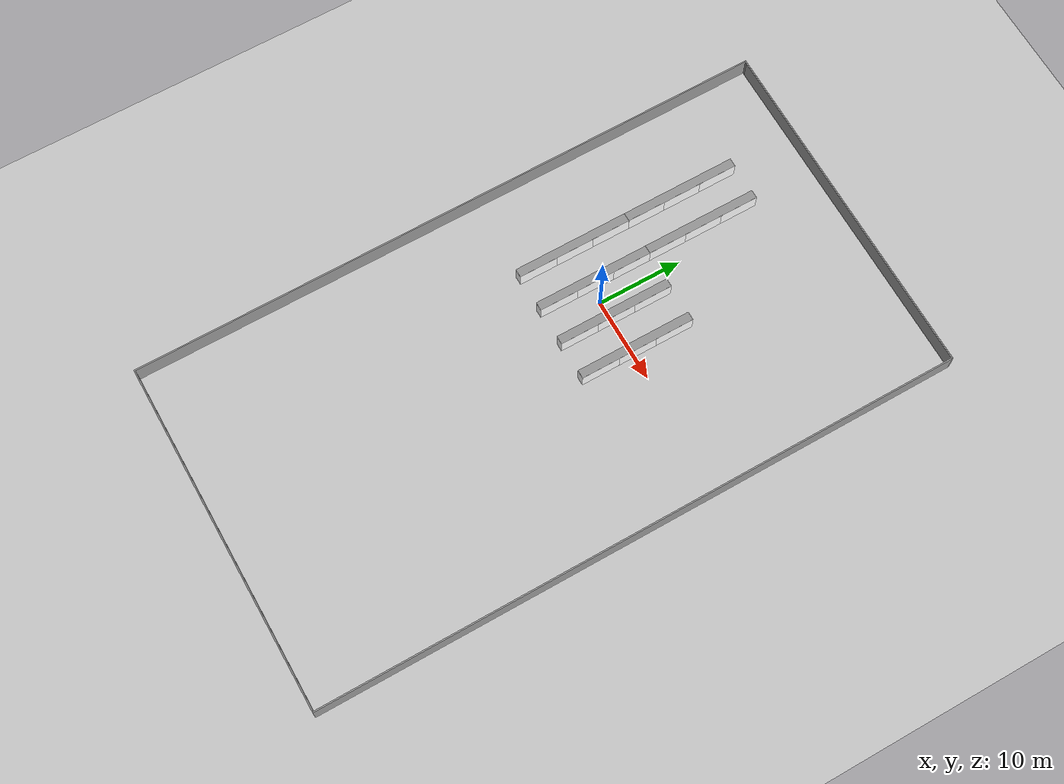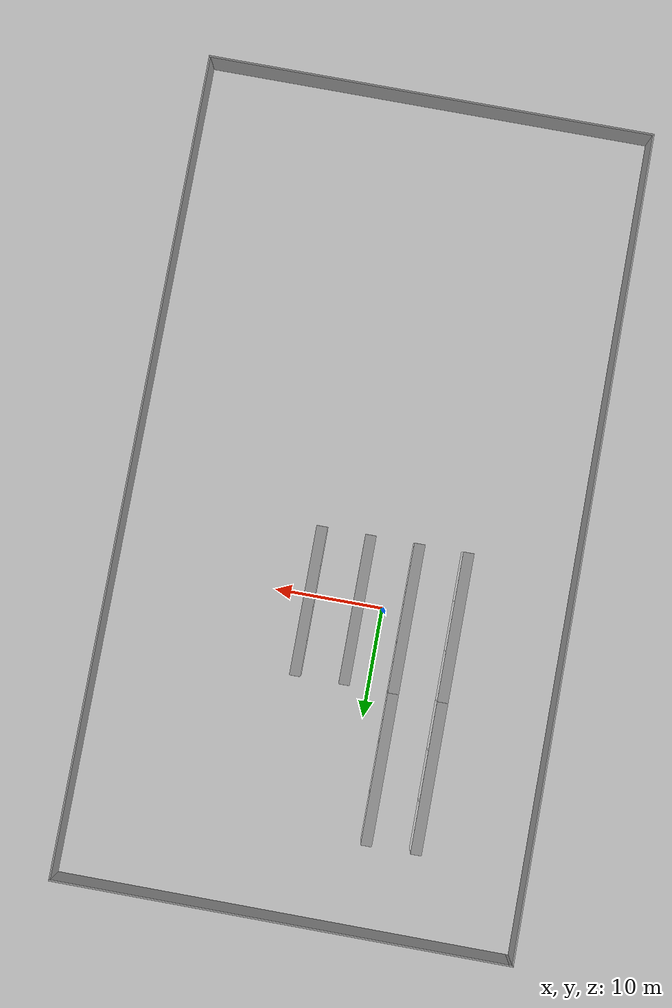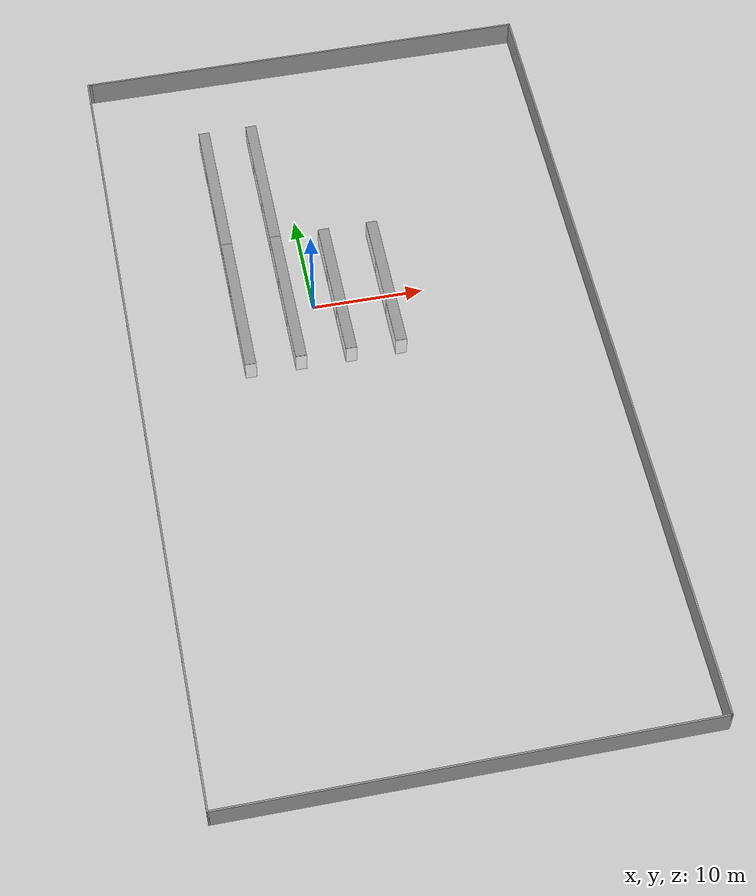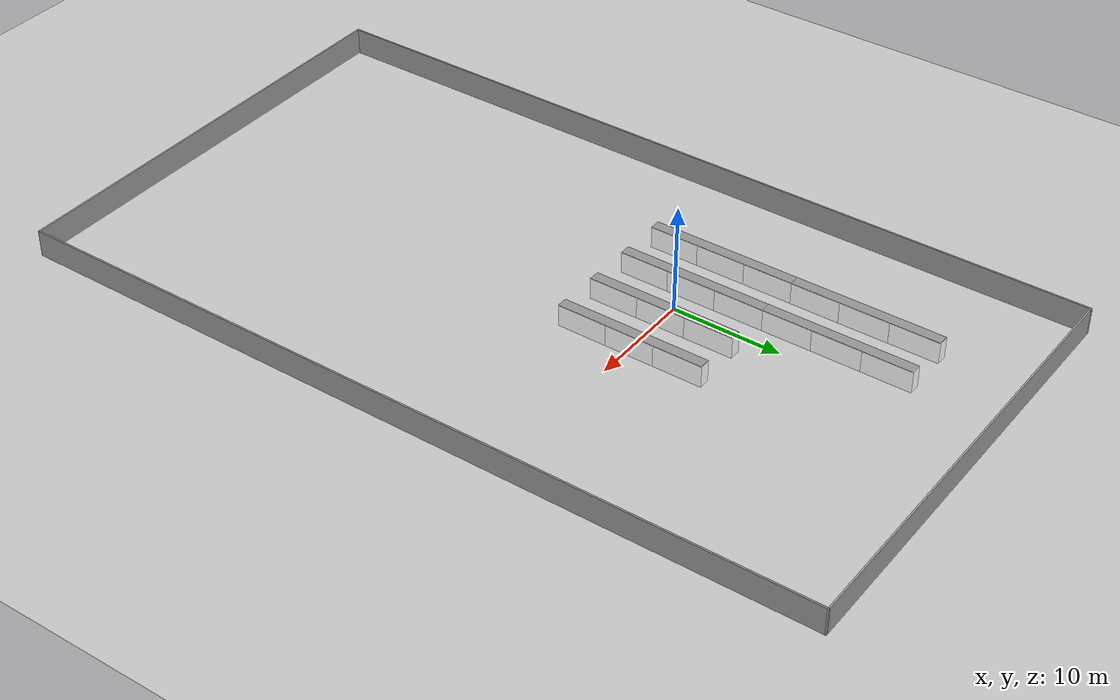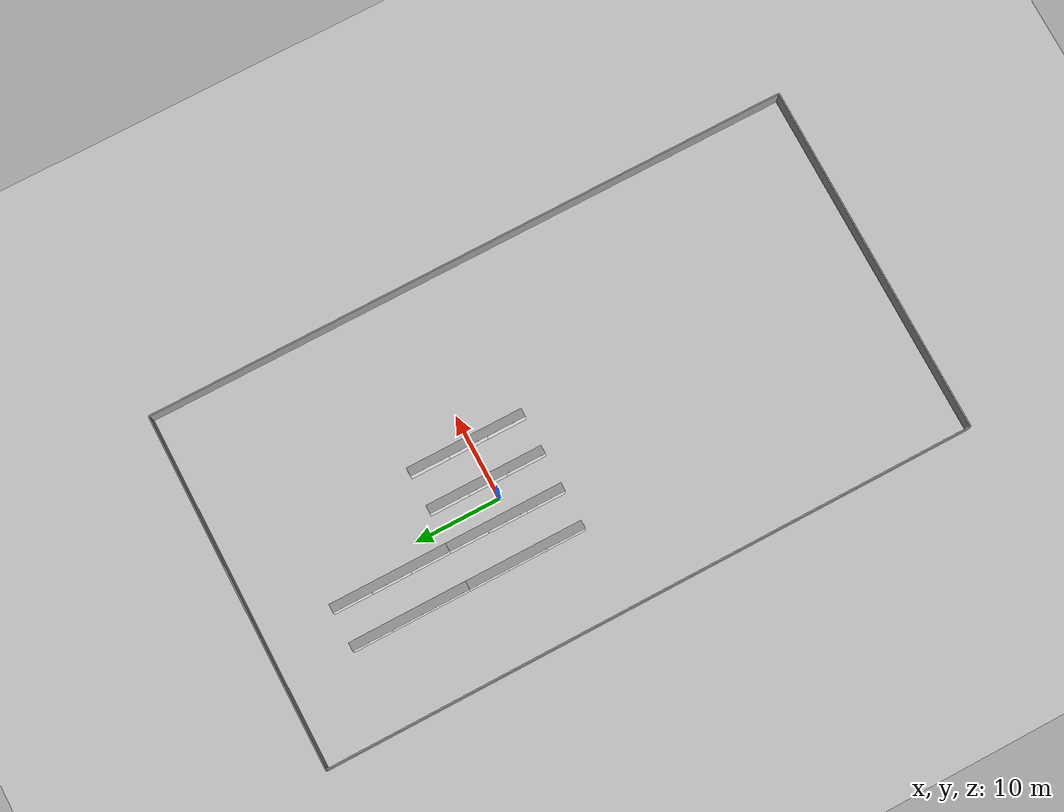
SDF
<sdf version="1.6">
 <world name="default">
  <light name="sun" type="directional">
   <pose>0 0 10 0 -0 0</pose>
   <diffuse>0.8 0.8 0.8 1</diffuse>
   <specular>0.2 0.2 0.2 1</specular>
   <attenuation>
    <range>1000</range>
    <constant>0.9</constant>
    <linear>0.01</linear>
    <quadratic>0.001</quadratic>
   </attenuation>
   <direction>-0.5 0.1 -0.9</direction>
  </light>
  <model name="ground_plane">
   <static>1</static>
   <link name="link">
    <collision name="collision">
     <geometry><plane><normal>0 0 1</normal><size>100 100</size></plane></geometry>
     <surface><friction><ode><mu>100</mu><mu2>50</mu2></ode></friction></surface>
    </collision>
    <visual name="visual">
     <cast_shadows>0</cast_shadows>
     <geometry><plane><normal>0 0 1</normal><size>100 100</size></plane></geometry>
     <material>
      <script><uri>file://media/materials/scripts/gazebo.material</uri><name>Gazebo/Grey</name></script>
     </material>
    </visual>
   </link>
  </model>
  <gravity>0 0 -9.8</gravity>
  <magnetic_field>6e-06 2.3e-05 -4.2e-05</magnetic_field>
  <atmosphere type="adiabatic"/>
  <physics name="default_physics" default="0" type="ode">
   <max_step_size>0.001</max_step_size>
   <real_time_factor>1</real_time_factor>
   <real_time_update_rate>1000</real_time_update_rate>
  </physics>
  <scene><ambient>0.4 0.4 0.4 1</ambient><background>0.7 0.7 0.7 1</background><shadows>1</shadows></scene>
  <spherical_coordinates>
   <surface_model>EARTH_WGS84</surface_model>
   <latitude_deg>0</latitude_deg>
   <longitude_deg>0</longitude_deg>
   <elevation>0</elevation>
   <heading_deg>0</heading_deg>
  </spherical_coordinates>
  <model name="market_aisle_clone">
   <link name="link_0">
    <inertial>
     <mass>45.3865</mass>
     <inertia><ixx>668.696</ixx><ixy>0</ixy><ixz>0</ixz><iyy>41.6273</iyy><iyz>0</iyz><izz>636.647</izz></inertia>
    </inertial>
    <visual name="visual">
     <material>
      <script>
       <uri>model://market_aisle/materials/scripts</uri>
       <uri>model://market_aisle/materials/textures</uri>
       <name>market_aisle/Picture</name>
      </script>
      <shader type="pixel"><normal_map>__default__</normal_map></shader>
      <ambient>1 1 1 1</ambient>
      <diffuse>1 1 1 1</diffuse>
      <specular>0 0 0 1</specular>
      <emissive>0 0 0 1</emissive>
     </material>
     <geometry><box><size>1 4.57035 2</size></box></geometry>
    </visual>
    <collision name="collision">
     <geometry><box><size>1 4.57035 2</size></box></geometry>
     <surface>
      <friction>
       <ode><mu>1</mu><mu2>1</mu2><fdir1>0 0 0</fdir1><slip1>0</slip1><slip2>0</slip2></ode>
       <torsional>
        <coefficient>1</coefficient>
        <patch_radius>0</patch_radius>
        <surface_radius>0</surface_radius>
        <use_patch_radius>1</use_patch_radius>
        <ode><slip>0</slip></ode>
       </torsional>
      </friction>
      <bounce><restitution_coefficient>0</restitution_coefficient><threshold>1e+06</threshold></bounce>
      <contact>
       <collide_without_contact>0</collide_without_contact>
       <collide_without_contact_bitmask>1</collide_without_contact_bitmask>
       <collide_bitmask>1</collide_bitmask>
       <ode>
        <soft_cfm>0</soft_cfm>
        <soft_erp>0.2</soft_erp>
        <kp>1e+13</kp>
        <kd>1</kd>
        <max_vel>0.01</max_vel>
        <min_depth>0</min_depth>
       </ode>
       <bullet>
        <split_impulse>1</split_impulse>
        <split_impulse_penetration_threshold>-0.01</split_impulse_penetration_threshold>
        <soft_cfm>0</soft_cfm>
        <soft_erp>0.2</soft_erp>
        <kp>1e+13</kp>
        <kd>1</kd>
       </bullet>
      </contact>
     </surface>
    </collision>
   </link>
   <static>1</static>
   <pose>-2.25 -4.17401 1 0 -0 0</pose>
  </model>
  <model name="market_aisle_clone_0">
   <link name="link_0">
    <inertial>
     <mass>45.3865</mass>
     <inertia><ixx>668.696</ixx><ixy>0</ixy><ixz>0</ixz><iyy>41.6273</iyy><iyz>0</iyz><izz>636.647</izz></inertia>
    </inertial>
    <visual name="visual">
     <material>
      <script>
       <uri>model://market_aisle/materials/scripts</uri>
       <uri>model://market_aisle/materials/textures</uri>
       <name>market_aisle/Picture</name>
      </script>
      <shader type="pixel"><normal_map>__default__</normal_map></shader>
      <ambient>1 1 1 1</ambient>
      <diffuse>1 1 1 1</diffuse>
      <specular>0 0 0 1</specular>
      <emissive>0 0 0 1</emissive>
     </material>
     <geometry><box><size>1 4.57035 2</size></box></geometry>
    </visual>
    <collision name="collision">
     <geometry><box><size>1 4.57035 2</size></box></geometry>
     <surface>
      <friction>
       <ode><mu>1</mu><mu2>1</mu2><fdir1>0 0 0</fdir1><slip1>0</slip1><slip2>0</slip2></ode>
       <torsional>
        <coefficient>1</coefficient>
        <patch_radius>0</patch_radius>
        <surface_radius>0</surface_radius>
        <use_patch_radius>1</use_patch_radius>
        <ode><slip>0</slip></ode>
       </torsional>
      </friction>
      <bounce><restitution_coefficient>0</restitution_coefficient><threshold>1e+06</threshold></bounce>
      <contact>
       <collide_without_contact>0</collide_without_contact>
       <collide_without_contact_bitmask>1</collide_without_contact_bitmask>
       <collide_bitmask>1</collide_bitmask>
       <ode>
        <soft_cfm>0</soft_cfm>
        <soft_erp>0.2</soft_erp>
        <kp>1e+13</kp>
        <kd>1</kd>
        <max_vel>0.01</max_vel>
        <min_depth>0</min_depth>
       </ode>
       <bullet>
        <split_impulse>1</split_impulse>
        <split_impulse_penetration_threshold>-0.01</split_impulse_penetration_threshold>
        <soft_cfm>0</soft_cfm>
        <soft_erp>0.2</soft_erp>
        <kp>1e+13</kp>
        <kd>1</kd>
       </bullet>
      </contact>
     </surface>
    </collision>
   </link>
   <static>1</static>
   <pose>-2.25 4.953 1 0 -0 0</pose>
  </model>
  <model name="market_aisle_clone1">
   <link name="link_0">
    <inertial>
     <mass>45.3865</mass>
     <inertia><ixx>668.696</ixx><ixy>0</ixy><ixz>0</ixz><iyy>41.6273</iyy><iyz>0</iyz><izz>636.647</izz></inertia>
    </inertial>
    <visual name="visual">
     <material>
      <script>
       <uri>model://market_aisle/materials/scripts</uri>
       <uri>model://market_aisle/materials/textures</uri>
       <name>market_aisle/Picture</name>
      </script>
      <shader type="pixel"><normal_map>__default__</normal_map></shader>
      <ambient>1 1 1 1</ambient>
      <diffuse>1 1 1 1</diffuse>
      <specular>0 0 0 1</specular>
      <emissive>0 0 0 1</emissive>
     </material>
     <geometry><box><size>1 4.57035 2</size></box></geometry>
    </visual>
    <collision name="collision">
     <geometry><box><size>1 4.57035 2</size></box></geometry>
     <surface>
      <friction>
       <ode><mu>1</mu><mu2>1</mu2><fdir1>0 0 0</fdir1><slip1>0</slip1><slip2>0</slip2></ode>
       <torsional>
        <coefficient>1</coefficient>
        <patch_radius>0</patch_radius>
        <surface_radius>0</surface_radius>
        <use_patch_radius>1</use_patch_radius>
        <ode><slip>0</slip></ode>
       </torsional>
      </friction>
      <bounce><restitution_coefficient>0</restitution_coefficient><threshold>1e+06</threshold></bounce>
      <contact>
       <collide_without_contact>0</collide_without_contact>
       <collide_without_contact_bitmask>1</collide_without_contact_bitmask>
       <collide_bitmask>1</collide_bitmask>
       <ode>
        <soft_cfm>0</soft_cfm>
        <soft_erp>0.2</soft_erp>
        <kp>1e+13</kp>
        <kd>1</kd>
        <max_vel>0.01</max_vel>
        <min_depth>0</min_depth>
       </ode>
       <bullet>
        <split_impulse>1</split_impulse>
        <split_impulse_penetration_threshold>-0.01</split_impulse_penetration_threshold>
        <soft_cfm>0</soft_cfm>
        <soft_erp>0.2</soft_erp>
        <kp>1e+13</kp>
        <kd>1</kd>
       </bullet>
      </contact>
     </surface>
    </collision>
   </link>
   <static>1</static>
   <pose>2.25 -4.17401 1 0 -0 0</pose>
  </model>
  <model name="market_aisle_clone_01">
   <link name="link_0">
    <inertial>
     <mass>45.3865</mass>
     <inertia><ixx>668.696</ixx><ixy>0</ixy><ixz>0</ixz><iyy>41.6273</iyy><iyz>0</iyz><izz>636.647</izz></inertia>
    </inertial>
    <visual name="visual">
     <material>
      <script>
       <uri>model://market_aisle/materials/scripts</uri>
       <uri>model://market_aisle/materials/textures</uri>
       <name>market_aisle/Picture</name>
      </script>
      <shader type="pixel"><normal_map>__default__</normal_map></shader>
      <ambient>1 1 1 1</ambient>
      <diffuse>1 1 1 1</diffuse>
      <specular>0 0 0 1</specular>
      <emissive>0 0 0 1</emissive>
     </material>
     <geometry><box><size>1 4.57035 2</size></box></geometry>
    </visual>
    <collision name="collision">
     <geometry><box><size>1 4.57035 2</size></box></geometry>
     <surface>
      <friction>
       <ode><mu>1</mu><mu2>1</mu2><fdir1>0 0 0</fdir1><slip1>0</slip1><slip2>0</slip2></ode>
       <torsional>
        <coefficient>1</coefficient>
        <patch_radius>0</patch_radius>
        <surface_radius>0</surface_radius>
        <use_patch_radius>1</use_patch_radius>
        <ode><slip>0</slip></ode>
       </torsional>
      </friction>
      <bounce><restitution_coefficient>0</restitution_coefficient><threshold>1e+06</threshold></bounce>
      <contact>
       <collide_without_contact>0</collide_without_contact>
       <collide_without_contact_bitmask>1</collide_without_contact_bitmask>
       <collide_bitmask>1</collide_bitmask>
       <ode>
        <soft_cfm>0</soft_cfm>
        <soft_erp>0.2</soft_erp>
        <kp>1e+13</kp>
        <kd>1</kd>
        <max_vel>0.01</max_vel>
        <min_depth>0</min_depth>
       </ode>
       <bullet>
        <split_impulse>1</split_impulse>
        <split_impulse_penetration_threshold>-0.01</split_impulse_penetration_threshold>
        <soft_cfm>0</soft_cfm>
        <soft_erp>0.2</soft_erp>
        <kp>1e+13</kp>
        <kd>1</kd>
       </bullet>
      </contact>
     </surface>
    </collision>
   </link>
   <static>1</static>
   <pose>2.25 4.953 1 0 -0 0</pose>
  </model>
  <model name="market_aisle_clone2">
   <link name="link_0">
    <inertial>
     <mass>45.3865</mass>
     <inertia><ixx>668.696</ixx><ixy>0</ixy><ixz>0</ixz><iyy>41.6273</iyy><iyz>0</iyz><izz>636.647</izz></inertia>
    </inertial>
    <visual name="visual">
     <material>
      <script>
       <uri>model://market_aisle/materials/scripts</uri>
       <uri>model://market_aisle/materials/textures</uri>
       <name>market_aisle/Picture</name>
      </script>
      <shader type="pixel"><normal_map>__default__</normal_map></shader>
      <ambient>1 1 1 1</ambient>
      <diffuse>1 1 1 1</diffuse>
      <specular>0 0 0 1</specular>
      <emissive>0 0 0 1</emissive>
     </material>
     <geometry><box><size>1 4.57035 2</size></box></geometry>
    </visual>
    <collision name="collision">
     <geometry><box><size>1 4.57035 2</size></box></geometry>
     <surface>
      <friction>
       <ode><mu>1</mu><mu2>1</mu2><fdir1>0 0 0</fdir1><slip1>0</slip1><slip2>0</slip2></ode>
       <torsional>
        <coefficient>1</coefficient>
        <patch_radius>0</patch_radius>
        <surface_radius>0</surface_radius>
        <use_patch_radius>1</use_patch_radius>
        <ode><slip>0</slip></ode>
       </torsional>
      </friction>
      <bounce><restitution_coefficient>0</restitution_coefficient><threshold>1e+06</threshold></bounce>
      <contact>
       <collide_without_contact>0</collide_without_contact>
       <collide_without_contact_bitmask>1</collide_without_contact_bitmask>
       <collide_bitmask>1</collide_bitmask>
       <ode>
        <soft_cfm>0</soft_cfm>
        <soft_erp>0.2</soft_erp>
        <kp>1e+13</kp>
        <kd>1</kd>
        <max_vel>0.01</max_vel>
        <min_depth>0</min_depth>
       </ode>
       <bullet>
        <split_impulse>1</split_impulse>
        <split_impulse_penetration_threshold>-0.01</split_impulse_penetration_threshold>
        <soft_cfm>0</soft_cfm>
        <soft_erp>0.2</soft_erp>
        <kp>1e+13</kp>
        <kd>1</kd>
       </bullet>
      </contact>
     </surface>
    </collision>
   </link>
   <static>1</static>
   <pose>6.75 -4.17401 1 0 -0 0</pose>
  </model>
  <model name="market_aisle_clone_02">
   <link name="link_0">
    <inertial>
     <mass>45.3865</mass>
     <inertia><ixx>668.696</ixx><ixy>0</ixy><ixz>0</ixz><iyy>41.6273</iyy><iyz>0</iyz><izz>636.647</izz></inertia>
    </inertial>
    <visual name="visual">
     <material>
      <script>
       <uri>model://market_aisle/materials/scripts</uri>
       <uri>model://market_aisle/materials/textures</uri>
       <name>market_aisle/Picture</name>
      </script>
      <shader type="pixel"><normal_map>__default__</normal_map></shader>
      <ambient>1 1 1 1</ambient>
      <diffuse>1 1 1 1</diffuse>
      <specular>0 0 0 1</specular>
      <emissive>0 0 0 1</emissive>
     </material>
     <geometry><box><size>1 4.57035 2</size></box></geometry>
    </visual>
    <collision name="collision">
     <geometry><box><size>1 4.57035 2</size></box></geometry>
     <surface>
      <friction>
       <ode><mu>1</mu><mu2>1</mu2><fdir1>0 0 0</fdir1><slip1>0</slip1><slip2>0</slip2></ode>
       <torsional>
        <coefficient>1</coefficient>
        <patch_radius>0</patch_radius>
        <surface_radius>0</surface_radius>
        <use_patch_radius>1</use_patch_radius>
        <ode><slip>0</slip></ode>
       </torsional>
      </friction>
      <bounce><restitution_coefficient>0</restitution_coefficient><threshold>1e+06</threshold></bounce>
      <contact>
       <collide_without_contact>0</collide_without_contact>
       <collide_without_contact_bitmask>1</collide_without_contact_bitmask>
       <collide_bitmask>1</collide_bitmask>
       <ode>
        <soft_cfm>0</soft_cfm>
        <soft_erp>0.2</soft_erp>
        <kp>1e+13</kp>
        <kd>1</kd>
        <max_vel>0.01</max_vel>
        <min_depth>0</min_depth>
       </ode>
       <bullet>
        <split_impulse>1</split_impulse>
        <split_impulse_penetration_threshold>-0.01</split_impulse_penetration_threshold>
        <soft_cfm>0</soft_cfm>
        <soft_erp>0.2</soft_erp>
        <kp>1e+13</kp>
        <kd>1</kd>
       </bullet>
      </contact>
     </surface>
    </collision>
   </link>
   <static>1</static>
   <pose>6.75 4.953 1 0 -0 0</pose>
  </model>
  <model name="market_aisle_clone3">
   <link name="link_0">
    <inertial>
     <mass>45.3865</mass>
     <inertia><ixx>668.696</ixx><ixy>0</ixy><ixz>0</ixz><iyy>41.6273</iyy><iyz>0</iyz><izz>636.647</izz></inertia>
    </inertial>
    <visual name="visual">
     <material>
      <script>
       <uri>model://market_aisle/materials/scripts</uri>
       <uri>model://market_aisle/materials/textures</uri>
       <name>market_aisle/Picture</name>
      </script>
      <shader type="pixel"><normal_map>__default__</normal_map></shader>
      <ambient>1 1 1 1</ambient>
      <diffuse>1 1 1 1</diffuse>
      <specular>0 0 0 1</specular>
      <emissive>0 0 0 1</emissive>
     </material>
     <geometry><box><size>1 4.57035 2</size></box></geometry>
    </visual>
    <collision name="collision">
     <geometry><box><size>1 4.57035 2</size></box></geometry>
     <surface>
      <friction>
       <ode><mu>1</mu><mu2>1</mu2><fdir1>0 0 0</fdir1><slip1>0</slip1><slip2>0</slip2></ode>
       <torsional>
        <coefficient>1</coefficient>
        <patch_radius>0</patch_radius>
        <surface_radius>0</surface_radius>
        <use_patch_radius>1</use_patch_radius>
        <ode><slip>0</slip></ode>
       </torsional>
      </friction>
      <bounce><restitution_coefficient>0</restitution_coefficient><threshold>1e+06</threshold></bounce>
      <contact>
       <collide_without_contact>0</collide_without_contact>
       <collide_without_contact_bitmask>1</collide_without_contact_bitmask>
       <collide_bitmask>1</collide_bitmask>
       <ode>
        <soft_cfm>0</soft_cfm>
        <soft_erp>0.2</soft_erp>
        <kp>1e+13</kp>
        <kd>1</kd>
        <max_vel>0.01</max_vel>
        <min_depth>0</min_depth>
       </ode>
       <bullet>
        <split_impulse>1</split_impulse>
        <split_impulse_penetration_threshold>-0.01</split_impulse_penetration_threshold>
        <soft_cfm>0</soft_cfm>
        <soft_erp>0.2</soft_erp>
        <kp>1e+13</kp>
        <kd>1</kd>
       </bullet>
      </contact>
     </surface>
    </collision>
   </link>
   <static>1</static>
   <pose>-6.75 -4.17401 1 0 -0 0</pose>
  </model>
  <model name="market_aisle_clone_03">
   <link name="link_0">
    <inertial>
     <mass>45.3865</mass>
     <inertia><ixx>668.696</ixx><ixy>0</ixy><ixz>0</ixz><iyy>41.6273</iyy><iyz>0</iyz><izz>636.647</izz></inertia>
    </inertial>
    <visual name="visual">
     <material>
      <script>
       <uri>model://market_aisle/materials/scripts</uri>
       <uri>model://market_aisle/materials/textures</uri>
       <name>market_aisle/Picture</name>
      </script>
      <shader type="pixel"><normal_map>__default__</normal_map></shader>
      <ambient>1 1 1 1</ambient>
      <diffuse>1 1 1 1</diffuse>
      <specular>0 0 0 1</specular>
      <emissive>0 0 0 1</emissive>
     </material>
     <geometry><box><size>1 4.57035 2</size></box></geometry>
    </visual>
    <collision name="collision">
     <geometry><box><size>1 4.57035 2</size></box></geometry>
     <surface>
      <friction>
       <ode><mu>1</mu><mu2>1</mu2><fdir1>0 0 0</fdir1><slip1>0</slip1><slip2>0</slip2></ode>
       <torsional>
        <coefficient>1</coefficient>
        <patch_radius>0</patch_radius>
        <surface_radius>0</surface_radius>
        <use_patch_radius>1</use_patch_radius>
        <ode><slip>0</slip></ode>
       </torsional>
      </friction>
      <bounce><restitution_coefficient>0</restitution_coefficient><threshold>1e+06</threshold></bounce>
      <contact>
       <collide_without_contact>0</collide_without_contact>
       <collide_without_contact_bitmask>1</collide_without_contact_bitmask>
       <collide_bitmask>1</collide_bitmask>
       <ode>
        <soft_cfm>0</soft_cfm>
        <soft_erp>0.2</soft_erp>
        <kp>1e+13</kp>
        <kd>1</kd>
        <max_vel>0.01</max_vel>
        <min_depth>0</min_depth>
       </ode>
       <bullet>
        <split_impulse>1</split_impulse>
        <split_impulse_penetration_threshold>-0.01</split_impulse_penetration_threshold>
        <soft_cfm>0</soft_cfm>
        <soft_erp>0.2</soft_erp>
        <kp>1e+13</kp>
        <kd>1</kd>
       </bullet>
      </contact>
     </surface>
    </collision>
   </link>
   <static>1</static>
   <pose>-6.75 4.953 1 0 -0 0</pose>
  </model>
  <model name="market_aisle_clone1_clone">
   <link name="link_0">
    <inertial>
     <mass>45.3865</mass>
     <inertia><ixx>668.696</ixx><ixy>0</ixy><ixz>0</ixz><iyy>41.6273</iyy><iyz>0</iyz><izz>636.647</izz></inertia>
    </inertial>
    <visual name="visual">
     <material>
      <script>
       <uri>model://market_aisle/materials/scripts</uri>
       <uri>model://market_aisle/materials/textures</uri>
       <name>market_aisle/Picture</name>
      </script>
      <shader type="pixel"><normal_map>__default__</normal_map></shader>
      <ambient>1 1 1 1</ambient>
      <diffuse>1 1 1 1</diffuse>
      <specular>0 0 0 1</specular>
      <emissive>0 0 0 1</emissive>
     </material>
     <geometry><box><size>1 4.57035 2</size></box></geometry>
    </visual>
    <collision name="collision">
     <geometry><box><size>1 4.57035 2</size></box></geometry>
     <surface>
      <friction>
       <ode><mu>1</mu><mu2>1</mu2><fdir1>0 0 0</fdir1><slip1>0</slip1><slip2>0</slip2></ode>
       <torsional>
        <coefficient>1</coefficient>
        <patch_radius>0</patch_radius>
        <surface_radius>0</surface_radius>
        <use_patch_radius>1</use_patch_radius>
        <ode><slip>0</slip></ode>
       </torsional>
      </friction>
      <bounce><restitution_coefficient>0</restitution_coefficient><threshold>1e+06</threshold></bounce>
      <contact>
       <collide_without_contact>0</collide_without_contact>
       <collide_without_contact_bitmask>1</collide_without_contact_bitmask>
       <collide_bitmask>1</collide_bitmask>
       <ode>
        <soft_cfm>0</soft_cfm>
        <soft_erp>0.2</soft_erp>
        <kp>1e+13</kp>
        <kd>1</kd>
        <max_vel>0.01</max_vel>
        <min_depth>0</min_depth>
       </ode>
       <bullet>
        <split_impulse>1</split_impulse>
        <split_impulse_penetration_threshold>-0.01</split_impulse_penetration_threshold>
        <soft_cfm>0</soft_cfm>
        <soft_erp>0.2</soft_erp>
        <kp>1e+13</kp>
        <kd>1</kd>
       </bullet>
      </contact>
     </surface>
    </collision>
   </link>
   <static>1</static>
   <pose>2.25 0.385462 1 0 -0 0</pose>
  </model>
  <model name="market_aisle_clone1_clone_0">
   <link name="link_0">
    <inertial>
     <mass>45.3865</mass>
     <inertia><ixx>668.696</ixx><ixy>0</ixy><ixz>0</ixz><iyy>41.6273</iyy><iyz>0</iyz><izz>636.647</izz></inertia>
    </inertial>
    <visual name="visual">
     <material>
      <script>
       <uri>model://market_aisle/materials/scripts</uri>
       <uri>model://market_aisle/materials/textures</uri>
       <name>market_aisle/Picture</name>
      </script>
      <shader type="pixel"><normal_map>__default__</normal_map></shader>
      <ambient>1 1 1 1</ambient>
      <diffuse>1 1 1 1</diffuse>
      <specular>0 0 0 1</specular>
      <emissive>0 0 0 1</emissive>
     </material>
     <geometry><box><size>1 4.57035 2</size></box></geometry>
    </visual>
    <collision name="collision">
     <geometry><box><size>1 4.57035 2</size></box></geometry>
     <surface>
      <friction>
       <ode><mu>1</mu><mu2>1</mu2><fdir1>0 0 0</fdir1><slip1>0</slip1><slip2>0</slip2></ode>
       <torsional>
        <coefficient>1</coefficient>
        <patch_radius>0</patch_radius>
        <surface_radius>0</surface_radius>
        <use_patch_radius>1</use_patch_radius>
        <ode><slip>0</slip></ode>
       </torsional>
      </friction>
      <bounce><restitution_coefficient>0</restitution_coefficient><threshold>1e+06</threshold></bounce>
      <contact>
       <collide_without_contact>0</collide_without_contact>
       <collide_without_contact_bitmask>1</collide_without_contact_bitmask>
       <collide_bitmask>1</collide_bitmask>
       <ode>
        <soft_cfm>0</soft_cfm>
        <soft_erp>0.2</soft_erp>
        <kp>1e+13</kp>
        <kd>1</kd>
        <max_vel>0.01</max_vel>
        <min_depth>0</min_depth>
       </ode>
       <bullet>
        <split_impulse>1</split_impulse>
        <split_impulse_penetration_threshold>-0.01</split_impulse_penetration_threshold>
        <soft_cfm>0</soft_cfm>
        <soft_erp>0.2</soft_erp>
        <kp>1e+13</kp>
        <kd>1</kd>
       </bullet>
      </contact>
     </surface>
    </collision>
   </link>
   <static>1</static>
   <pose>-2.25 0.377509 1 0 -0 0</pose>
  </model>
  <model name="market_aisle_clone1_clone_1">
   <link name="link_0">
    <inertial>
     <mass>45.3865</mass>
     <inertia><ixx>668.696</ixx><ixy>0</ixy><ixz>0</ixz><iyy>41.6273</iyy><iyz>0</iyz><izz>636.647</izz></inertia>
    </inertial>
    <visual name="visual">
     <material>
      <script>
       <uri>model://market_aisle/materials/scripts</uri>
       <uri>model://market_aisle/materials/textures</uri>
       <name>market_aisle/Picture</name>
      </script>
      <shader type="pixel"><normal_map>__default__</normal_map></shader>
      <ambient>1 1 1 1</ambient>
      <diffuse>1 1 1 1</diffuse>
      <specular>0 0 0 1</specular>
      <emissive>0 0 0 1</emissive>
     </material>
     <geometry><box><size>1 4.57035 2</size></box></geometry>
    </visual>
    <collision name="collision">
     <geometry><box><size>1 4.57035 2</size></box></geometry>
     <surface>
      <friction>
       <ode><mu>1</mu><mu2>1</mu2><fdir1>0 0 0</fdir1><slip1>0</slip1><slip2>0</slip2></ode>
       <torsional>
        <coefficient>1</coefficient>
        <patch_radius>0</patch_radius>
        <surface_radius>0</surface_radius>
        <use_patch_radius>1</use_patch_radius>
        <ode><slip>0</slip></ode>
       </torsional>
      </friction>
      <bounce><restitution_coefficient>0</restitution_coefficient><threshold>1e+06</threshold></bounce>
      <contact>
       <collide_without_contact>0</collide_without_contact>
       <collide_without_contact_bitmask>1</collide_without_contact_bitmask>
       <collide_bitmask>1</collide_bitmask>
       <ode>
        <soft_cfm>0</soft_cfm>
        <soft_erp>0.2</soft_erp>
        <kp>1e+13</kp>
        <kd>1</kd>
        <max_vel>0.01</max_vel>
        <min_depth>0</min_depth>
       </ode>
       <bullet>
        <split_impulse>1</split_impulse>
        <split_impulse_penetration_threshold>-0.01</split_impulse_penetration_threshold>
        <soft_cfm>0</soft_cfm>
        <soft_erp>0.2</soft_erp>
        <kp>1e+13</kp>
        <kd>1</kd>
       </bullet>
      </contact>
     </surface>
    </collision>
   </link>
   <static>1</static>
   <pose>-6.75 0.388711 1 0 -0 0</pose>
  </model>
  <model name="market_aisle_clone1_clone_2">
   <link name="link_0">
    <inertial>
     <mass>45.3865</mass>
     <inertia><ixx>668.696</ixx><ixy>0</ixy><ixz>0</ixz><iyy>41.6273</iyy><iyz>0</iyz><izz>636.647</izz></inertia>
    </inertial>
    <visual name="visual">
     <material>
      <script>
       <uri>model://market_aisle/materials/scripts</uri>
       <uri>model://market_aisle/materials/textures</uri>
       <name>market_aisle/Picture</name>
      </script>
      <shader type="pixel"><normal_map>__default__</normal_map></shader>
      <ambient>1 1 1 1</ambient>
      <diffuse>1 1 1 1</diffuse>
      <specular>0 0 0 1</specular>
      <emissive>0 0 0 1</emissive>
     </material>
     <geometry><box><size>1 4.57035 2</size></box></geometry>
    </visual>
    <collision name="collision">
     <geometry><box><size>1 4.57035 2</size></box></geometry>
     <surface>
      <friction>
       <ode><mu>1</mu><mu2>1</mu2><fdir1>0 0 0</fdir1><slip1>0</slip1><slip2>0</slip2></ode>
       <torsional>
        <coefficient>1</coefficient>
        <patch_radius>0</patch_radius>
        <surface_radius>0</surface_radius>
        <use_patch_radius>1</use_patch_radius>
        <ode><slip>0</slip></ode>
       </torsional>
      </friction>
      <bounce><restitution_coefficient>0</restitution_coefficient><threshold>1e+06</threshold></bounce>
      <contact>
       <collide_without_contact>0</collide_without_contact>
       <collide_without_contact_bitmask>1</collide_without_contact_bitmask>
       <collide_bitmask>1</collide_bitmask>
       <ode>
        <soft_cfm>0</soft_cfm>
        <soft_erp>0.2</soft_erp>
        <kp>1e+13</kp>
        <kd>1</kd>
        <max_vel>0.01</max_vel>
        <min_depth>0</min_depth>
       </ode>
       <bullet>
        <split_impulse>1</split_impulse>
        <split_impulse_penetration_threshold>-0.01</split_impulse_penetration_threshold>
        <soft_cfm>0</soft_cfm>
        <soft_erp>0.2</soft_erp>
        <kp>1e+13</kp>
        <kd>1</kd>
       </bullet>
      </contact>
     </surface>
    </collision>
   </link>
   <static>1</static>
   <pose>6.75 0.394789 1 0 -0 0</pose>
  </model>
  <model name="asile_top_0">
   <link name="link_0">
    <pose>5e-06 0 -4e-06 0 -0 0</pose>
    <inertial>
     <mass>0.475296</mass>
     <inertia>
      <ixx>7.40524</ixx>
      <ixy>0</ixy>
      <ixz>0</ixz>
      <iyy>0.0496263</iyy>
      <iyz>0</iyz>
      <izz>7.45479</izz>
     </inertia>
    </inertial>
    <visual name="visual">
     <geometry><box><size>1 13.6734 0.031027</size></box></geometry>
     <material>
      <lighting>1</lighting>
      <script><uri>file://media/materials/scripts/gazebo.material</uri><name>Gazebo/Grey</name></script>
      <shader type="pixel"><normal_map>__default__</normal_map></shader>
      <ambient>0.3 0.3 0.3 1</ambient>
      <diffuse>0.7 0.7 0.7 1</diffuse>
      <specular>0.01 0.01 0.01 1</specular>
      <emissive>0 0 0 1</emissive>
     </material>
    </visual>
    <collision name="collision">
     <geometry><box><size>1 13.6734 0.031027</size></box></geometry>
     <surface>
      <friction>
       <ode><mu>1</mu><mu2>1</mu2><fdir1>0 0 0</fdir1><slip1>0</slip1><slip2>0</slip2></ode>
       <torsional>
        <coefficient>1</coefficient>
        <patch_radius>0</patch_radius>
        <surface_radius>0</surface_radius>
        <use_patch_radius>1</use_patch_radius>
        <ode><slip>0</slip></ode>
       </torsional>
      </friction>
      <bounce><restitution_coefficient>0</restitution_coefficient><threshold>1e+06</threshold></bounce>
      <contact>
       <collide_without_contact>0</collide_without_contact>
       <collide_without_contact_bitmask>1</collide_without_contact_bitmask>
       <collide_bitmask>1</collide_bitmask>
       <ode>
        <soft_cfm>0</soft_cfm>
        <soft_erp>0.2</soft_erp>
        <kp>1e+13</kp>
        <kd>1</kd>
        <max_vel>0.01</max_vel>
        <min_depth>0</min_depth>
       </ode>
       <bullet>
        <split_impulse>1</split_impulse>
        <split_impulse_penetration_threshold>-0.01</split_impulse_penetration_threshold>
        <soft_cfm>0</soft_cfm>
        <soft_erp>0.2</soft_erp>
        <kp>1e+13</kp>
        <kd>1</kd>
       </bullet>
      </contact>
     </surface>
    </collision>
   </link>
   <static>1</static>
   <pose>-6.75 0.384568 2.02165 0 -0 0</pose>
  </model>
  <model name="asile_top">
   <link name="link_0">
    <pose>5e-06 0 -4e-06 0 -0 0</pose>
    <inertial>
     <mass>0.475296</mass>
     <inertia>
      <ixx>7.40524</ixx>
      <ixy>0</ixy>
      <ixz>0</ixz>
      <iyy>0.0496263</iyy>
      <iyz>0</iyz>
      <izz>7.45479</izz>
     </inertia>
    </inertial>
    <visual name="visual">
     <geometry><box><size>1 13.6734 0.031027</size></box></geometry>
     <material>
      <lighting>1</lighting>
      <script><uri>file://media/materials/scripts/gazebo.material</uri><name>Gazebo/Grey</name></script>
      <shader type="pixel"><normal_map>__default__</normal_map></shader>
      <ambient>0.3 0.3 0.3 1</ambient>
      <diffuse>0.7 0.7 0.7 1</diffuse>
      <specular>0.01 0.01 0.01 1</specular>
      <emissive>0 0 0 1</emissive>
     </material>
    </visual>
    <collision name="collision">
     <geometry><box><size>1 13.6734 0.031027</size></box></geometry>
     <surface>
      <friction>
       <ode><mu>1</mu><mu2>1</mu2><fdir1>0 0 0</fdir1><slip1>0</slip1><slip2>0</slip2></ode>
       <torsional>
        <coefficient>1</coefficient>
        <patch_radius>0</patch_radius>
        <surface_radius>0</surface_radius>
        <use_patch_radius>1</use_patch_radius>
        <ode><slip>0</slip></ode>
       </torsional>
      </friction>
      <bounce><restitution_coefficient>0</restitution_coefficient><threshold>1e+06</threshold></bounce>
      <contact>
       <collide_without_contact>0</collide_without_contact>
       <collide_without_contact_bitmask>1</collide_without_contact_bitmask>
       <collide_bitmask>1</collide_bitmask>
       <ode>
        <soft_cfm>0</soft_cfm>
        <soft_erp>0.2</soft_erp>
        <kp>1e+13</kp>
        <kd>1</kd>
        <max_vel>0.01</max_vel>
        <min_depth>0</min_depth>
       </ode>
       <bullet>
        <split_impulse>1</split_impulse>
        <split_impulse_penetration_threshold>-0.01</split_impulse_penetration_threshold>
        <soft_cfm>0</soft_cfm>
        <soft_erp>0.2</soft_erp>
        <kp>1e+13</kp>
        <kd>1</kd>
       </bullet>
      </contact>
     </surface>
    </collision>
   </link>
   <static>1</static>
   <pose>-2.25 0.384568 2.02165 0 -0 0</pose>
  </model>
  <model name="asile_top_1">
   <link name="link_0">
    <pose>5e-06 0 -4e-06 0 -0 0</pose>
    <inertial>
     <mass>0.475296</mass>
     <inertia>
      <ixx>7.40524</ixx>
      <ixy>0</ixy>
      <ixz>0</ixz>
      <iyy>0.0496263</iyy>
      <iyz>0</iyz>
      <izz>7.45479</izz>
     </inertia>
    </inertial>
    <visual name="visual">
     <geometry><box><size>1 13.6734 0.031027</size></box></geometry>
     <material>
      <lighting>1</lighting>
      <script><uri>file://media/materials/scripts/gazebo.material</uri><name>Gazebo/Grey</name></script>
      <shader type="pixel"><normal_map>__default__</normal_map></shader>
      <ambient>0.3 0.3 0.3 1</ambient>
      <diffuse>0.7 0.7 0.7 1</diffuse>
      <specular>0.01 0.01 0.01 1</specular>
      <emissive>0 0 0 1</emissive>
     </material>
    </visual>
    <collision name="collision">
     <geometry><box><size>1 13.6734 0.031027</size></box></geometry>
     <surface>
      <friction>
       <ode><mu>1</mu><mu2>1</mu2><fdir1>0 0 0</fdir1><slip1>0</slip1><slip2>0</slip2></ode>
       <torsional>
        <coefficient>1</coefficient>
        <patch_radius>0</patch_radius>
        <surface_radius>0</surface_radius>
        <use_patch_radius>1</use_patch_radius>
        <ode><slip>0</slip></ode>
       </torsional>
      </friction>
      <bounce><restitution_coefficient>0</restitution_coefficient><threshold>1e+06</threshold></bounce>
      <contact>
       <collide_without_contact>0</collide_without_contact>
       <collide_without_contact_bitmask>1</collide_without_contact_bitmask>
       <collide_bitmask>1</collide_bitmask>
       <ode>
        <soft_cfm>0</soft_cfm>
        <soft_erp>0.2</soft_erp>
        <kp>1e+13</kp>
        <kd>1</kd>
        <max_vel>0.01</max_vel>
        <min_depth>0</min_depth>
       </ode>
       <bullet>
        <split_impulse>1</split_impulse>
        <split_impulse_penetration_threshold>-0.01</split_impulse_penetration_threshold>
        <soft_cfm>0</soft_cfm>
        <soft_erp>0.2</soft_erp>
        <kp>1e+13</kp>
        <kd>1</kd>
       </bullet>
      </contact>
     </surface>
    </collision>
   </link>
   <static>1</static>
   <pose>2.25 0.384568 2.02165 0 -0 0</pose>
  </model>
  <model name="asile_top_2">
   <link name="link_0">
    <pose>5e-06 0 -4e-06 0 -0 0</pose>
    <inertial>
     <mass>0.475296</mass>
     <inertia>
      <ixx>7.40524</ixx>
      <ixy>0</ixy>
      <ixz>0</ixz>
      <iyy>0.0496263</iyy>
      <iyz>0</iyz>
      <izz>7.45479</izz>
     </inertia>
    </inertial>
    <visual name="visual">
     <geometry><box><size>1 13.6734 0.031027</size></box></geometry>
     <material>
      <lighting>1</lighting>
      <script><uri>file://media/materials/scripts/gazebo.material</uri><name>Gazebo/Grey</name></script>
      <shader type="pixel"><normal_map>__default__</normal_map></shader>
      <ambient>0.3 0.3 0.3 1</ambient>
      <diffuse>0.7 0.7 0.7 1</diffuse>
      <specular>0.01 0.01 0.01 1</specular>
      <emissive>0 0 0 1</emissive>
     </material>
    </visual>
    <collision name="collision">
     <geometry><box><size>1 13.6734 0.031027</size></box></geometry>
     <surface>
      <friction>
       <ode><mu>1</mu><mu2>1</mu2><fdir1>0 0 0</fdir1><slip1>0</slip1><slip2>0</slip2></ode>
       <torsional>
        <coefficient>1</coefficient>
        <patch_radius>0</patch_radius>
        <surface_radius>0</surface_radius>
        <use_patch_radius>1</use_patch_radius>
        <ode><slip>0</slip></ode>
       </torsional>
      </friction>
      <bounce><restitution_coefficient>0</restitution_coefficient><threshold>1e+06</threshold></bounce>
      <contact>
       <collide_without_contact>0</collide_without_contact>
       <collide_without_contact_bitmask>1</collide_without_contact_bitmask>
       <collide_bitmask>1</collide_bitmask>
       <ode>
        <soft_cfm>0</soft_cfm>
        <soft_erp>0.2</soft_erp>
        <kp>1e+13</kp>
        <kd>1</kd>
        <max_vel>0.01</max_vel>
        <min_depth>0</min_depth>
       </ode>
       <bullet>
        <split_impulse>1</split_impulse>
        <split_impulse_penetration_threshold>-0.01</split_impulse_penetration_threshold>
        <soft_cfm>0</soft_cfm>
        <soft_erp>0.2</soft_erp>
        <kp>1e+13</kp>
        <kd>1</kd>
       </bullet>
      </contact>
     </surface>
    </collision>
   </link>
   <static>1</static>
   <pose>6.75 0.384568 2.02165 0 -0 0</pose>
  </model>
  <model name="market_aisle_clone_03_clone">
   <link name="link_0">
    <inertial>
     <mass>45.3865</mass>
     <inertia><ixx>668.696</ixx><ixy>0</ixy><ixz>0</ixz><iyy>41.6273</iyy><iyz>0</iyz><izz>636.647</izz></inertia>
    </inertial>
    <visual name="visual">
     <material>
      <script>
       <uri>model://market_aisle/materials/scripts</uri>
       <uri>model://market_aisle/materials/textures</uri>
       <name>market_aisle/Picture</name>
      </script>
      <shader type="pixel"><normal_map>__default__</normal_map></shader>
      <ambient>1 1 1 1</ambient>
      <diffuse>1 1 1 1</diffuse>
      <specular>0 0 0 1</specular>
      <emissive>0 0 0 1</emissive>
     </material>
     <geometry><box><size>1 4.57035 2</size></box></geometry>
    </visual>
    <collision name="collision">
     <geometry><box><size>1 4.57035 2</size></box></geometry>
     <surface>
      <friction>
       <ode><mu>1</mu><mu2>1</mu2><fdir1>0 0 0</fdir1><slip1>0</slip1><slip2>0</slip2></ode>
       <torsional>
        <coefficient>1</coefficient>
        <patch_radius>0</patch_radius>
        <surface_radius>0</surface_radius>
        <use_patch_radius>1</use_patch_radius>
        <ode><slip>0</slip></ode>
       </torsional>
      </friction>
      <bounce><restitution_coefficient>0</restitution_coefficient><threshold>1e+06</threshold></bounce>
      <contact>
       <collide_without_contact>0</collide_without_contact>
       <collide_without_contact_bitmask>1</collide_without_contact_bitmask>
       <collide_bitmask>1</collide_bitmask>
       <ode>
        <soft_cfm>0</soft_cfm>
        <soft_erp>0.2</soft_erp>
        <kp>1e+13</kp>
        <kd>1</kd>
        <max_vel>0.01</max_vel>
        <min_depth>0</min_depth>
       </ode>
       <bullet>
        <split_impulse>1</split_impulse>
        <split_impulse_penetration_threshold>-0.01</split_impulse_penetration_threshold>
        <soft_cfm>0</soft_cfm>
        <soft_erp>0.2</soft_erp>
        <kp>1e+13</kp>
        <kd>1</kd>
       </bullet>
      </contact>
     </surface>
    </collision>
   </link>
   <static>1</static>
   <pose>-6.73625 9.51575 1 0 -0 0</pose>
  </model>
  <model name="market_aisle_clone_03_clone_0">
   <link name="link_0">
    <inertial>
     <mass>45.3865</mass>
     <inertia><ixx>668.696</ixx><ixy>0</ixy><ixz>0</ixz><iyy>41.6273</iyy><iyz>0</iyz><izz>636.647</izz></inertia>
    </inertial>
    <visual name="visual">
     <material>
      <script>
       <uri>model://market_aisle/materials/scripts</uri>
       <uri>model://market_aisle/materials/textures</uri>
       <name>market_aisle/Picture</name>
      </script>
      <shader type="pixel"><normal_map>__default__</normal_map></shader>
      <ambient>1 1 1 1</ambient>
      <diffuse>1 1 1 1</diffuse>
      <specular>0 0 0 1</specular>
      <emissive>0 0 0 1</emissive>
     </material>
     <geometry><box><size>1 4.57035 2</size></box></geometry>
    </visual>
    <collision name="collision">
     <geometry><box><size>1 4.57035 2</size></box></geometry>
     <surface>
      <friction>
       <ode><mu>1</mu><mu2>1</mu2><fdir1>0 0 0</fdir1><slip1>0</slip1><slip2>0</slip2></ode>
       <torsional>
        <coefficient>1</coefficient>
        <patch_radius>0</patch_radius>
        <surface_radius>0</surface_radius>
        <use_patch_radius>1</use_patch_radius>
        <ode><slip>0</slip></ode>
       </torsional>
      </friction>
      <bounce><restitution_coefficient>0</restitution_coefficient><threshold>1e+06</threshold></bounce>
      <contact>
       <collide_without_contact>0</collide_without_contact>
       <collide_without_contact_bitmask>1</collide_without_contact_bitmask>
       <collide_bitmask>1</collide_bitmask>
       <ode>
        <soft_cfm>0</soft_cfm>
        <soft_erp>0.2</soft_erp>
        <kp>1e+13</kp>
        <kd>1</kd>
        <max_vel>0.01</max_vel>
        <min_depth>0</min_depth>
       </ode>
       <bullet>
        <split_impulse>1</split_impulse>
        <split_impulse_penetration_threshold>-0.01</split_impulse_penetration_threshold>
        <soft_cfm>0</soft_cfm>
        <soft_erp>0.2</soft_erp>
        <kp>1e+13</kp>
        <kd>1</kd>
       </bullet>
      </contact>
     </surface>
    </collision>
   </link>
   <static>1</static>
   <pose>-6.73525 14.026 1 0 -0 0</pose>
  </model>
  <model name="market_aisle_clone_03_clone_1">
   <link name="link_0">
    <inertial>
     <mass>45.3865</mass>
     <inertia><ixx>668.696</ixx><ixy>0</ixy><ixz>0</ixz><iyy>41.6273</iyy><iyz>0</iyz><izz>636.647</izz></inertia>
    </inertial>
    <visual name="visual">
     <material>
      <script>
       <uri>model://market_aisle/materials/scripts</uri>
       <uri>model://market_aisle/materials/textures</uri>
       <name>market_aisle/Picture</name>
      </script>
      <shader type="pixel"><normal_map>__default__</normal_map></shader>
      <ambient>1 1 1 1</ambient>
      <diffuse>1 1 1 1</diffuse>
      <specular>0 0 0 1</specular>
      <emissive>0 0 0 1</emissive>
     </material>
     <geometry><box><size>1 4.57035 2</size></box></geometry>
    </visual>
    <collision name="collision">
     <geometry><box><size>1 4.57035 2</size></box></geometry>
     <surface>
      <friction>
       <ode><mu>1</mu><mu2>1</mu2><fdir1>0 0 0</fdir1><slip1>0</slip1><slip2>0</slip2></ode>
       <torsional>
        <coefficient>1</coefficient>
        <patch_radius>0</patch_radius>
        <surface_radius>0</surface_radius>
        <use_patch_radius>1</use_patch_radius>
        <ode><slip>0</slip></ode>
       </torsional>
      </friction>
      <bounce><restitution_coefficient>0</restitution_coefficient><threshold>1e+06</threshold></bounce>
      <contact>
       <collide_without_contact>0</collide_without_contact>
       <collide_without_contact_bitmask>1</collide_without_contact_bitmask>
       <collide_bitmask>1</collide_bitmask>
       <ode>
        <soft_cfm>0</soft_cfm>
        <soft_erp>0.2</soft_erp>
        <kp>1e+13</kp>
        <kd>1</kd>
        <max_vel>0.01</max_vel>
        <min_depth>0</min_depth>
       </ode>
       <bullet>
        <split_impulse>1</split_impulse>
        <split_impulse_penetration_threshold>-0.01</split_impulse_penetration_threshold>
        <soft_cfm>0</soft_cfm>
        <soft_erp>0.2</soft_erp>
        <kp>1e+13</kp>
        <kd>1</kd>
       </bullet>
      </contact>
     </surface>
    </collision>
   </link>
   <static>1</static>
   <pose>-6.75 18.5943 1 0 -0 0</pose>
  </model>
  <model name="market_aisle_clone_03_clone_clone">
   <link name="link_0">
    <inertial>
     <mass>45.3865</mass>
     <inertia><ixx>668.696</ixx><ixy>0</ixy><ixz>0</ixz><iyy>41.6273</iyy><iyz>0</iyz><izz>636.647</izz></inertia>
    </inertial>
    <visual name="visual">
     <material>
      <script>
       <uri>model://market_aisle/materials/scripts</uri>
       <uri>model://market_aisle/materials/textures</uri>
       <name>market_aisle/Picture</name>
      </script>
      <shader type="pixel"><normal_map>__default__</normal_map></shader>
      <ambient>1 1 1 1</ambient>
      <diffuse>1 1 1 1</diffuse>
      <specular>0 0 0 1</specular>
      <emissive>0 0 0 1</emissive>
     </material>
     <geometry><box><size>1 4.57035 2</size></box></geometry>
    </visual>
    <collision name="collision">
     <geometry><box><size>1 4.57035 2</size></box></geometry>
     <surface>
      <friction>
       <ode><mu>1</mu><mu2>1</mu2><fdir1>0 0 0</fdir1><slip1>0</slip1><slip2>0</slip2></ode>
       <torsional>
        <coefficient>1</coefficient>
        <patch_radius>0</patch_radius>
        <surface_radius>0</surface_radius>
        <use_patch_radius>1</use_patch_radius>
        <ode><slip>0</slip></ode>
       </torsional>
      </friction>
      <bounce><restitution_coefficient>0</restitution_coefficient><threshold>1e+06</threshold></bounce>
      <contact>
       <collide_without_contact>0</collide_without_contact>
       <collide_without_contact_bitmask>1</collide_without_contact_bitmask>
       <collide_bitmask>1</collide_bitmask>
       <ode>
        <soft_cfm>0</soft_cfm>
        <soft_erp>0.2</soft_erp>
        <kp>1e+13</kp>
        <kd>1</kd>
        <max_vel>0.01</max_vel>
        <min_depth>0</min_depth>
       </ode>
       <bullet>
        <split_impulse>1</split_impulse>
        <split_impulse_penetration_threshold>-0.01</split_impulse_penetration_threshold>
        <soft_cfm>0</soft_cfm>
        <soft_erp>0.2</soft_erp>
        <kp>1e+13</kp>
        <kd>1</kd>
       </bullet>
      </contact>
     </surface>
    </collision>
   </link>
   <static>1</static>
   <pose>-2.25 9.52213 1 0 -0 0</pose>
  </model>
  <model name="market_aisle_clone_03_clone_clone_0">
   <link name="link_0">
    <inertial>
     <mass>45.3865</mass>
     <inertia><ixx>668.696</ixx><ixy>0</ixy><ixz>0</ixz><iyy>41.6273</iyy><iyz>0</iyz><izz>636.647</izz></inertia>
    </inertial>
    <visual name="visual">
     <material>
      <script>
       <uri>model://market_aisle/materials/scripts</uri>
       <uri>model://market_aisle/materials/textures</uri>
       <name>market_aisle/Picture</name>
      </script>
      <shader type="pixel"><normal_map>__default__</normal_map></shader>
      <ambient>1 1 1 1</ambient>
      <diffuse>1 1 1 1</diffuse>
      <specular>0 0 0 1</specular>
      <emissive>0 0 0 1</emissive>
     </material>
     <geometry><box><size>1 4.57035 2</size></box></geometry>
    </visual>
    <collision name="collision">
     <geometry><box><size>1 4.57035 2</size></box></geometry>
     <surface>
      <friction>
       <ode><mu>1</mu><mu2>1</mu2><fdir1>0 0 0</fdir1><slip1>0</slip1><slip2>0</slip2></ode>
       <torsional>
        <coefficient>1</coefficient>
        <patch_radius>0</patch_radius>
        <surface_radius>0</surface_radius>
        <use_patch_radius>1</use_patch_radius>
        <ode><slip>0</slip></ode>
       </torsional>
      </friction>
      <bounce><restitution_coefficient>0</restitution_coefficient><threshold>1e+06</threshold></bounce>
      <contact>
       <collide_without_contact>0</collide_without_contact>
       <collide_without_contact_bitmask>1</collide_without_contact_bitmask>
       <collide_bitmask>1</collide_bitmask>
       <ode>
        <soft_cfm>0</soft_cfm>
        <soft_erp>0.2</soft_erp>
        <kp>1e+13</kp>
        <kd>1</kd>
        <max_vel>0.01</max_vel>
        <min_depth>0</min_depth>
       </ode>
       <bullet>
        <split_impulse>1</split_impulse>
        <split_impulse_penetration_threshold>-0.01</split_impulse_penetration_threshold>
        <soft_cfm>0</soft_cfm>
        <soft_erp>0.2</soft_erp>
        <kp>1e+13</kp>
        <kd>1</kd>
       </bullet>
      </contact>
     </surface>
    </collision>
   </link>
   <static>1</static>
   <pose>-2.25 14.0661 1 0 -0 0</pose>
  </model>
  <model name="market_aisle_clone_03_clone_clone_1">
   <link name="link_0">
    <inertial>
     <mass>45.3865</mass>
     <inertia><ixx>668.696</ixx><ixy>0</ixy><ixz>0</ixz><iyy>41.6273</iyy><iyz>0</iyz><izz>636.647</izz></inertia>
    </inertial>
    <visual name="visual">
     <material>
      <script>
       <uri>model://market_aisle/materials/scripts</uri>
       <uri>model://market_aisle/materials/textures</uri>
       <name>market_aisle/Picture</name>
      </script>
      <shader type="pixel"><normal_map>__default__</normal_map></shader>
      <ambient>1 1 1 1</ambient>
      <diffuse>1 1 1 1</diffuse>
      <specular>0 0 0 1</specular>
      <emissive>0 0 0 1</emissive>
     </material>
     <geometry><box><size>1 4.57035 2</size></box></geometry>
    </visual>
    <collision name="collision">
     <geometry><box><size>1 4.57035 2</size></box></geometry>
     <surface>
      <friction>
       <ode><mu>1</mu><mu2>1</mu2><fdir1>0 0 0</fdir1><slip1>0</slip1><slip2>0</slip2></ode>
       <torsional>
        <coefficient>1</coefficient>
        <patch_radius>0</patch_radius>
        <surface_radius>0</surface_radius>
        <use_patch_radius>1</use_patch_radius>
        <ode><slip>0</slip></ode>
       </torsional>
      </friction>
      <bounce><restitution_coefficient>0</restitution_coefficient><threshold>1e+06</threshold></bounce>
      <contact>
       <collide_without_contact>0</collide_without_contact>
       <collide_without_contact_bitmask>1</collide_without_contact_bitmask>
       <collide_bitmask>1</collide_bitmask>
       <ode>
        <soft_cfm>0</soft_cfm>
        <soft_erp>0.2</soft_erp>
        <kp>1e+13</kp>
        <kd>1</kd>
        <max_vel>0.01</max_vel>
        <min_depth>0</min_depth>
       </ode>
       <bullet>
        <split_impulse>1</split_impulse>
        <split_impulse_penetration_threshold>-0.01</split_impulse_penetration_threshold>
        <soft_cfm>0</soft_cfm>
        <soft_erp>0.2</soft_erp>
        <kp>1e+13</kp>
        <kd>1</kd>
       </bullet>
      </contact>
     </surface>
    </collision>
   </link>
   <static>1</static>
   <pose>-2.25 18.6113 1 0 -0 0</pose>
  </model>
  <model name="asile_top_clone">
   <link name="link_0">
    <pose>5e-06 0 -4e-06 0 -0 0</pose>
    <inertial>
     <mass>0.475296</mass>
     <inertia>
      <ixx>7.40524</ixx>
      <ixy>0</ixy>
      <ixz>0</ixz>
      <iyy>0.0496263</iyy>
      <iyz>0</iyz>
      <izz>7.45479</izz>
     </inertia>
    </inertial>
    <visual name="visual">
     <geometry><box><size>1 13.6734 0.031027</size></box></geometry>
     <material>
      <lighting>1</lighting>
      <script><uri>file://media/materials/scripts/gazebo.material</uri><name>Gazebo/Grey</name></script>
      <shader type="pixel"><normal_map>__default__</normal_map></shader>
      <ambient>0.3 0.3 0.3 1</ambient>
      <diffuse>0.7 0.7 0.7 1</diffuse>
      <specular>0.01 0.01 0.01 1</specular>
      <emissive>0 0 0 1</emissive>
     </material>
    </visual>
    <collision name="collision">
     <geometry><box><size>1 13.6734 0.031027</size></box></geometry>
     <surface>
      <friction>
       <ode><mu>1</mu><mu2>1</mu2><fdir1>0 0 0</fdir1><slip1>0</slip1><slip2>0</slip2></ode>
       <torsional>
        <coefficient>1</coefficient>
        <patch_radius>0</patch_radius>
        <surface_radius>0</surface_radius>
        <use_patch_radius>1</use_patch_radius>
        <ode><slip>0</slip></ode>
       </torsional>
      </friction>
      <bounce><restitution_coefficient>0</restitution_coefficient><threshold>1e+06</threshold></bounce>
      <contact>
       <collide_without_contact>0</collide_without_contact>
       <collide_without_contact_bitmask>1</collide_without_contact_bitmask>
       <collide_bitmask>1</collide_bitmask>
       <ode>
        <soft_cfm>0</soft_cfm>
        <soft_erp>0.2</soft_erp>
        <kp>1e+13</kp>
        <kd>1</kd>
        <max_vel>0.01</max_vel>
        <min_depth>0</min_depth>
       </ode>
       <bullet>
        <split_impulse>1</split_impulse>
        <split_impulse_penetration_threshold>-0.01</split_impulse_penetration_threshold>
        <soft_cfm>0</soft_cfm>
        <soft_erp>0.2</soft_erp>
        <kp>1e+13</kp>
        <kd>1</kd>
       </bullet>
      </contact>
     </surface>
    </collision>
   </link>
   <static>1</static>
   <pose>-2.25 14.0526 2.02165 0 -0 0</pose>
  </model>
  <model name="asile_top_clone_0">
   <link name="link_0">
    <pose>5e-06 0 -4e-06 0 -0 0</pose>
    <inertial>
     <mass>0.475296</mass>
     <inertia>
      <ixx>7.40524</ixx>
      <ixy>0</ixy>
      <ixz>0</ixz>
      <iyy>0.0496263</iyy>
      <iyz>0</iyz>
      <izz>7.45479</izz>
     </inertia>
    </inertial>
    <visual name="visual">
     <geometry><box><size>1 13.6734 0.031027</size></box></geometry>
     <material>
      <lighting>1</lighting>
      <script><uri>file://media/materials/scripts/gazebo.material</uri><name>Gazebo/Grey</name></script>
      <shader type="pixel"><normal_map>__default__</normal_map></shader>
      <ambient>0.3 0.3 0.3 1</ambient>
      <diffuse>0.7 0.7 0.7 1</diffuse>
      <specular>0.01 0.01 0.01 1</specular>
      <emissive>0 0 0 1</emissive>
     </material>
    </visual>
    <collision name="collision">
     <geometry><box><size>1 13.6734 0.031027</size></box></geometry>
     <surface>
      <friction>
       <ode><mu>1</mu><mu2>1</mu2><fdir1>0 0 0</fdir1><slip1>0</slip1><slip2>0</slip2></ode>
       <torsional>
        <coefficient>1</coefficient>
        <patch_radius>0</patch_radius>
        <surface_radius>0</surface_radius>
        <use_patch_radius>1</use_patch_radius>
        <ode><slip>0</slip></ode>
       </torsional>
      </friction>
      <bounce><restitution_coefficient>0</restitution_coefficient><threshold>1e+06</threshold></bounce>
      <contact>
       <collide_without_contact>0</collide_without_contact>
       <collide_without_contact_bitmask>1</collide_without_contact_bitmask>
       <collide_bitmask>1</collide_bitmask>
       <ode>
        <soft_cfm>0</soft_cfm>
        <soft_erp>0.2</soft_erp>
        <kp>1e+13</kp>
        <kd>1</kd>
        <max_vel>0.01</max_vel>
        <min_depth>0</min_depth>
       </ode>
       <bullet>
        <split_impulse>1</split_impulse>
        <split_impulse_penetration_threshold>-0.01</split_impulse_penetration_threshold>
        <soft_cfm>0</soft_cfm>
        <soft_erp>0.2</soft_erp>
        <kp>1e+13</kp>
        <kd>1</kd>
       </bullet>
      </contact>
     </surface>
    </collision>
   </link>
   <static>1</static>
   <pose>-6.75 14.0408 2.02165 0 -0 0</pose>
  </model>
  <model name="market_walls">
   <pose>4.0162 -9.33546 0 0 -0 0</pose>
   <link name="Wall_0">
    <collision name="Wall_0_Collision">
     <geometry><box><size>76.25 0.15 2.5</size></box></geometry>
     <pose>0 0 1.25 0 -0 0</pose>
    </collision>
    <visual name="Wall_0_Visual">
     <pose>0 0 1.25 0 -0 0</pose>
     <geometry><box><size>76.25 0.15 2.5</size></box></geometry>
     <material>
      <script><uri>file://media/materials/scripts/gazebo.material</uri><name>Gazebo/Grey</name></script>
      <ambient>1 1 1 1</ambient>
     </material>
     <meta><layer>0</layer></meta>
    </visual>
    <pose>-20.8 -2e-06 0 0 0 -1.5708</pose>
   </link>
   <link name="Wall_1">
    <collision name="Wall_1_Collision">
     <geometry><box><size>41.75 0.15 2.5</size></box></geometry>
     <pose>0 0 1.25 0 -0 0</pose>
    </collision>
    <visual name="Wall_1_Visual">
     <pose>0 0 1.25 0 -0 0</pose>
     <geometry><box><size>41.75 0.15 2.5</size></box></geometry>
     <material>
      <script><uri>file://media/materials/scripts/gazebo.material</uri><name>Gazebo/Grey</name></script>
      <ambient>1 1 1 1</ambient>
     </material>
     <meta><layer>0</layer></meta>
    </visual>
    <pose>0 -38.05 0 0 -0 0</pose>
   </link>
   <link name="Wall_2">
    <collision name="Wall_2_Collision">
     <geometry><box><size>76.25 0.15 2.5</size></box></geometry>
     <pose>0 0 1.25 0 -0 0</pose>
    </collision>
    <visual name="Wall_2_Visual">
     <pose>0 0 1.25 0 -0 0</pose>
     <geometry><box><size>76.25 0.15 2.5</size></box></geometry>
     <material>
      <script><uri>file://media/materials/scripts/gazebo.material</uri><name>Gazebo/Grey</name></script>
      <ambient>1 1 1 1</ambient>
     </material>
     <meta><layer>0</layer></meta>
    </visual>
    <pose>20.8 -2e-06 0 0 -0 1.5708</pose>
   </link>
   <link name="Wall_3">
    <collision name="Wall_3_Collision">
     <geometry><box><size>41.5 0.15 2.5</size></box></geometry>
     <pose>0 0 1.25 0 -0 0</pose>
    </collision>
    <visual name="Wall_3_Visual">
     <pose>0 0 1.25 0 -0 0</pose>
     <geometry><box><size>41.5 0.15 2.5</size></box></geometry>
     <material>
      <script><uri>file://media/materials/scripts/gazebo.material</uri><name>Gazebo/Grey</name></script>
      <ambient>1 1 1 1</ambient>
     </material>
     <meta><layer>0</layer></meta>
    </visual>
    <pose>0.125 38.05 0 0 -0 3.14159</pose>
   </link>
   <link name="Wall_5">
    <collision name="Wall_5_Collision">
     <geometry><box><size>0.4 0.15 2.5</size></box></geometry>
     <pose>0 0 1.25 0 -0 0</pose>
    </collision>
    <visual name="Wall_5_Visual">
     <pose>0 0 1.25 0 -0 0</pose>
     <geometry><box><size>0.4 0.15 2.5</size></box></geometry>
     <material>
      <script><uri>file://media/materials/scripts/gazebo.material</uri><name>Gazebo/Grey</name></script>
      <ambient>1 1 1 1</ambient>
     </material>
     <meta><layer>0</layer></meta>
    </visual>
    <pose>-20.675 38.05 0 0 0 -3.14159</pose>
   </link>
   <static>1</static>
  </model>
 </world>
</sdf>
